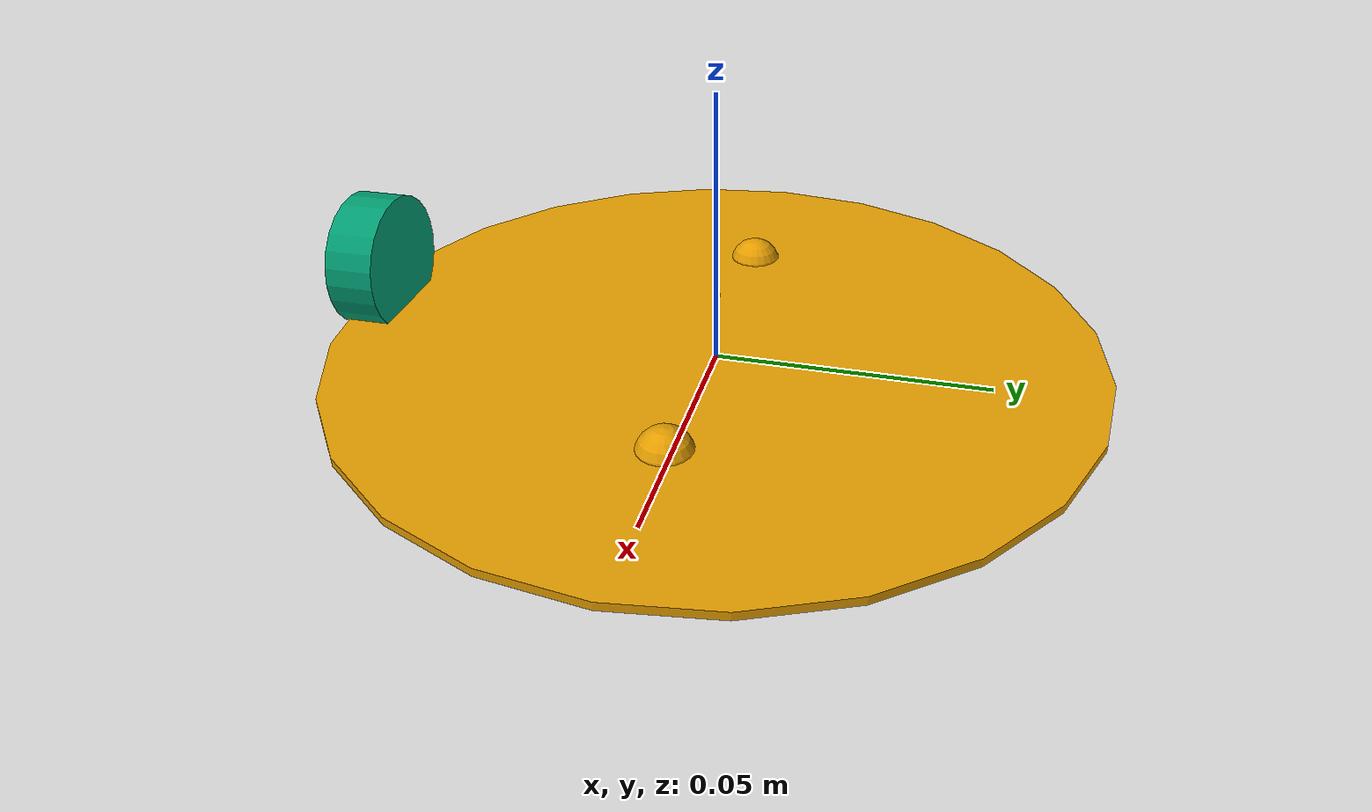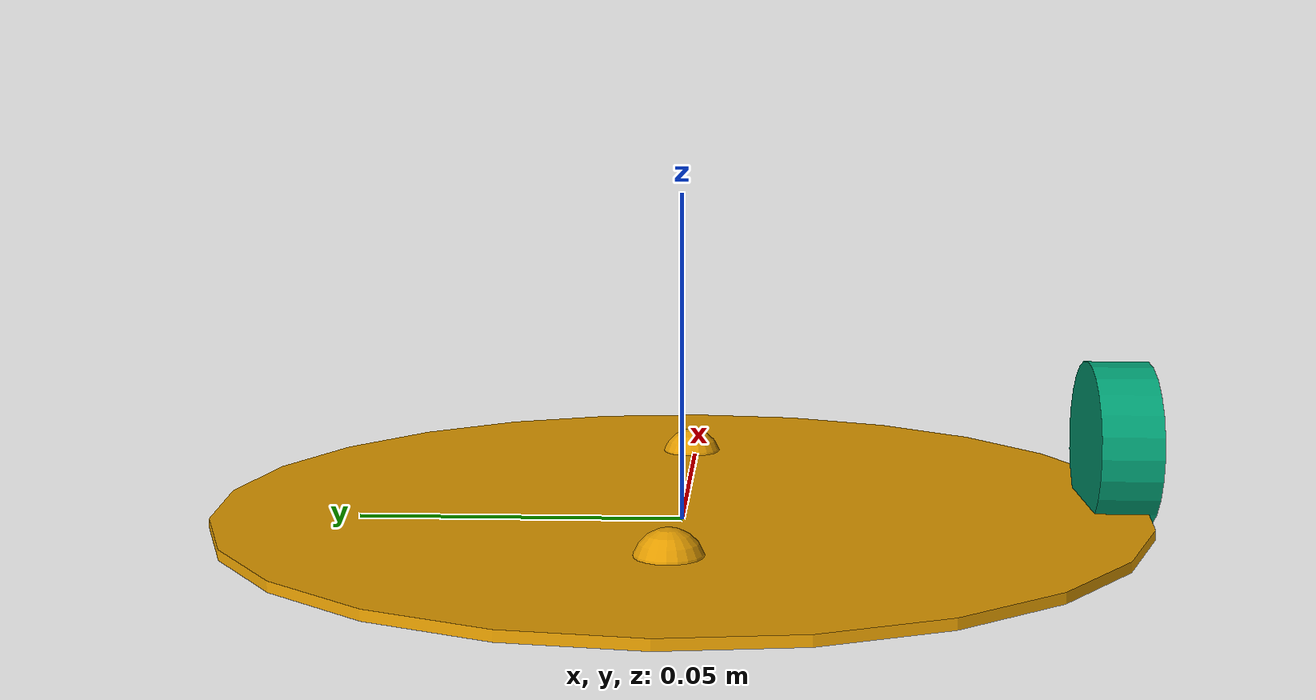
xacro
<?xml version="1.0"?>
<robot xmlns:xacro="http://www.ros.org/wiki/xacro" name="pibot">
  <xacro:include filename="$(find pibot_description)/models/iti0201_robot/urdf/pibot.urdf.xacro" />

  <xacro:base_with_casters/>
  <xacro:wheels/>
</robot>

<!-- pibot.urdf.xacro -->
<robot xmlns:xacro="http://www.ros.org/wiki/xacro" name="pibot">

  <xacro:macro name="base_with_casters">
    <xacro:property name="base_radius" value="0.07" />
    <xacro:property name="base_height" value="0.0015" />
    <xacro:property name="base_mass" value="0.48" />
    <xacro:property name="caster_wheel_radius" value="0.005" />

    <link name="base_with_casters">

      <inertial>
        <mass value="${base_mass}"/>
        <inertia ixx="${1/12 * base_mass * ((3 * base_radius * base_radius) + (base_height * base_height))}" ixy="0.0" ixz="0.0"
          iyy="${1/12 * base_mass * ((3 * base_radius * base_radius) + (base_height * base_height))}" iyz="0.0"
          izz="${1/2 * base_mass * (base_radius * base_radius)}"/>
      </inertial>

      <visual name='base_visual'>
      <origin xyz="0 0 0.003" rpy="0 0 0"/>
        <geometry>
          <cylinder radius="${base_radius}" length="${base_height}"/>
        </geometry>
      </visual>

      <collision name='base_collision'>
      <origin xyz="0 0 0.003" rpy="0 0 0"/>
        <geometry>
          <cylinder radius="${base_radius}" length="${base_height}"/>
        </geometry>
      </collision>

      <visual name='front_caster_visual'>
        <origin xyz="0.035 0 0.0025" rpy="0 0 0"/>
        <geometry>
          <sphere radius="${caster_wheel_radius}"/>
        </geometry>
      </visual>

      <collision name='front_caster_collision'>
        <origin xyz="0.035 0 0.0025" rpy="0 0 0"/>
        <geometry>
          <sphere radius="${caster_wheel_radius}"/>
        </geometry>
      </collision>

      <visual name='rear_caster_visual'>
        <origin xyz="-0.035 0 0.0025" rpy="0 0 0"/>
        <geometry>
          <sphere radius="${caster_wheel_radius}"/>
        </geometry>
      </visual>

      <collision name='rear_caster_collision'>
        <origin xyz="-0.035 0 0.0025" rpy="0 0 0"/>
        <geometry>
          <sphere radius="${caster_wheel_radius}"/>
        </geometry>
      </collision>
    </link>

    <gazebo reference="base_with_casters">
      <surface>
        <friction>
          <ode>
            <mu1 value="1.0"/>
            <mu2 value="1.0"/>
          </ode>
        </friction>
      </surface>
    </gazebo>

    <link name="wheel_joint">
      <visual name='joint_visual'>
        <geometry>
          <box size="0.001 0.001 0.001"/>
        </geometry>
      </visual>
    </link>

    <joint type="fixed" name="Wheel_joint_to_base">
      <origin xyz="0 0 0.0125" rpy="0 0 0" />
      <child link="wheel_joint"/>
      <parent link="base_with_casters" />
    </joint>
  </xacro:macro>

<!-- ONLY VISUAL -->
  <xacro:macro name="brainbox_with_battery">
    <link name="brainbox_with_battery">
      <visual name="brainbox_visual">
        <origin xyz="-0.022 0 0.0294" rpy="0 0 0" />
        <geometry>
          <box size="0.077 0.0468 0.0512"/>
        </geometry>
      </visual>

      <visual name="camera_stand_visual">
        <origin xyz="0.0294 0 0.043" rpy="0 0 0" />
        <geometry>
          <box size="0.0255 0.0553 0.07896"/>
        </geometry>
      </visual>

      <visual name="camera_stand_right_wall_visual">
        <origin xyz="0.0294 -0.02467 0.1" rpy="0 0 0" />
        <geometry>
          <box size="0.0255 0.006 0.0346"/>
        </geometry>
      </visual>

      <visual name="camera_stand_left_wall_visual">
        <origin xyz="0.0294 0.02467 0.1" rpy="0 0 0" />
        <geometry>
          <box size="0.0255 0.006 0.0346"/>
        </geometry>
      </visual>
    </link>

    <joint type="fixed" name="brainbox_to_base">
      <origin xyz="0 0 0" rpy="0 0 0"/>
      <child link="brainbox_with_battery"/>
      <parent link="base_with_casters"/>
    </joint>
  </xacro:macro>

<!-- SHARP SENSORS -->
  <xacro:macro name="front_ir_sensors">
    <link name="front_right_45deg_ir">
      <collision name="collision">
        <geometry>
          <box size="0.01 0.01 0.02"/>
        </geometry>
      </collision>

      <visual name="visual">
        <geometry>
          <box size="0.01 0.01 0.02"/>
        </geometry>
      </visual>
    </link>

    <joint type="fixed" name="front_right_45deg_ir_to_base">
      <origin xyz="0.0326 -0.0471 0.0138" rpy="0 0 -0.78535"/>
      <child link="front_right_45deg_ir"/>
      <parent link="base_with_casters"/>
    </joint>

    <gazebo reference="front_right_45deg_ir">
      <sensor name="ir" type="ray">
        <ray>
          <scan>
            <horizontal>
              <samples>100</samples>
              <resolution>1</resolution>
            </horizontal>
          </scan>
          <range>
            <min>0.01</min>
            <max>2.00</max>
            <resolution>0.1</resolution>
          </range>
        </ray>
        <always_on>1</always_on>
        <update_rate>30</update_rate>
        <visualize>true</visualize>
        <plugin name="ir_plugin" filename="libir_plugin.so">
          <topic>ir/front_right</topic>
        </plugin>
      </sensor>
    </gazebo>

    <link name="front_middle_ir">
      <collision name="collision">
        <geometry>
          <box size="0.01 0.02 0.01"/>
        </geometry>
      </collision>

      <visual name="visual">
        <geometry>
          <box size="0.01 0.02 0.01"/>
        </geometry>
      </visual>
    </link>

    <joint type="fixed" name="front_middle_ir_to_base">
      <origin xyz="0.059312 0 0.0088" rpy="0 0 0"/>
      <child link="front_middle_ir"/>
      <parent link="base_with_casters"/>
    </joint>

    <gazebo reference="front_middle_ir">
      <sensor name="ir" type="ray">
          <ray>
            <scan>
              <horizontal>
                <samples>100</samples>
                <resolution>1</resolution>
              </horizontal>
            </scan>
            <range>
              <min>0.01</min>
              <max>2.00</max>
              <resolution>0.1</resolution>
            </range>
          </ray>
          <always_on>1</always_on>
          <update_rate>30</update_rate>
          <visualize>true</visualize>
          <plugin name="ir_plugin" filename="libir_plugin.so">
            <topic>ir/front_middle</topic>
          </plugin>
        </sensor>
    </gazebo>

    <link name="front_left_45deg_ir">
      <collision name="collision">
        <geometry>
          <box size="0.01 0.01 0.02"/>
        </geometry>
      </collision>

      <visual name="visual">
        <geometry>
          <box size="0.01 0.01 0.02"/>
        </geometry>
      </visual>
    </link>

    <joint type="fixed" name="front_left_45deg_ir_to_base">
      <origin xyz="0.0326151 0.0470558 0.0138" rpy="0 0 0.78535"/>
      <child link="front_left_45deg_ir"/>
      <parent link="base_with_casters"/>
    </joint>

    <gazebo reference="front_left_45deg_ir">
      <sensor name="ir" type="ray">
          <ray>
            <scan>
              <horizontal>
                <samples>100</samples>
                <resolution>1</resolution>
              </horizontal>
            </scan>
            <range>
              <min>0.01</min>
              <max>2.00</max>
              <resolution>0.1</resolution>
            </range>
          </ray>
          <always_on>1</always_on>
          <update_rate>30</update_rate>
          <visualize>true</visualize>
          <plugin name="ir_plugin" filename="libir_plugin.so">
            <topic>ir/front_left</topic>
          </plugin>
        </sensor>
    </gazebo>
  </xacro:macro>

<!-- REAR IR SENSORS -->
  <xacro:macro name="rear_ir_sensors">
    <link name="rear_right_90deg_ir">
      <collision name="collision">
        <geometry>
          <box size="0.012 0.008 0.0135"/>
        </geometry>
      </collision>
      <visual name="visual">
        <geometry>
          <box size="0.012 0.008 0.0135"/>
        </geometry>
      </visual>
    </link>

    <joint type="fixed" name="rear_right_90deg_ir_to_base">
    <origin xyz="-0.02256 -0.0547 0.01134" rpy="0 0 -1.5707" />
      <child link="rear_right_90deg_ir"/>
      <parent link="base_with_casters"/>
    </joint>

    <gazebo reference="rear_right_90deg_ir">
      <sensor name="ir" type="ray">
        <ray>
          <scan>
            <horizontal>
              <samples>100</samples>
              <resolution>1</resolution>
            </horizontal>
          </scan>
          <range>
            <min>0.01</min>
            <max>2.00</max>
            <resolution>0.1</resolution>
          </range>
        </ray>
        <always_on>1</always_on>
        <update_rate>30</update_rate>
        <visualize>true</visualize>
        <plugin name="ir_plugin" filename="libir_plugin.so">
          <topic>ir/rear_right_90</topic>
        </plugin>
      </sensor>
    </gazebo>

    <link name="rear_right_45deg_ir">
      <collision name="collision">
        <geometry>
          <box size="0.012 0.008 0.0135"/>
        </geometry>
      </collision>
      <visual name="visual">
        <geometry>
          <box size="0.012 0.008 0.0135"/>
        </geometry>
      </visual>
    </link>

    <joint type="fixed" name="rear_right_45deg_ir_to_base">
    <origin xyz="-0.037845 -0.046812 0.011341" rpy="0 0 -2.35605" />
      <child link="rear_right_45deg_ir"/>
      <parent link="base_with_casters"/>
    </joint>

    <gazebo reference="rear_right_45deg_ir">
      <sensor name="ir" type="ray">
        <ray>
          <scan>
            <horizontal>
              <samples>100</samples>
              <resolution>1</resolution>
            </horizontal>
          </scan>
          <range>
            <min>0.01</min>
            <max>2.00</max>
            <resolution>0.1</resolution>
          </range>
        </ray>
        <always_on>1</always_on>
        <update_rate>30</update_rate>
        <visualize>true</visualize>
        <plugin name="ir_plugin" filename="libir_plugin.so">
          <topic>ir/rear_right_45</topic>
        </plugin>
      </sensor>
    </gazebo>

    <link name="rear_right_straight_ir">
      <collision name="collision">
        <geometry>
          <box size="0.012 0.008 0.0135"/>
        </geometry>
      </collision>
      <visual name="visual">
        <geometry>
          <box size="0.012 0.008 0.0135"/>
        </geometry>
      </visual>
    </link>

    <joint type="fixed" name="rear_right_straight_ir_to_base">
    <origin xyz="-0.0501109 -0.035473 0.011341" rpy="0 0 -3.14" />
      <child link="rear_right_straight_ir"/>
      <parent link="base_with_casters"/>
    </joint>

    <gazebo reference="rear_right_straight_ir">
      <sensor name="ir" type="ray">
        <ray>
          <scan>
            <horizontal>
              <samples>100</samples>
              <resolution>1</resolution>
            </horizontal>
          </scan>
          <range>
            <min>0.01</min>
            <max>2.00</max>
            <resolution>0.1</resolution>
          </range>
        </ray>
        <always_on>1</always_on>
        <update_rate>30</update_rate>
        <visualize>true</visualize>
        <plugin name="ir_plugin" filename="libir_plugin.so">
          <topic>ir/rear_right_0</topic>
        </plugin>
      </sensor>
    </gazebo>

      <link name="rear_left_90deg_ir">
        <collision name="collision">
          <geometry>
            <box size="0.012 0.008 0.0135"/>
          </geometry>
        </collision>
        <visual name="visual">
          <geometry>
            <box size="0.012 0.008 0.0135"/>
          </geometry>
        </visual>
      </link>

      <joint type="fixed" name="rear_left_90deg_ir_to_base">
      <origin xyz="-0.0225688 0.054749 0.011341" rpy="0 0 1.5707" />
        <child link="rear_left_90deg_ir"/>
        <parent link="base_with_casters"/>
      </joint>

      <gazebo reference="rear_left_90deg_ir">
        <sensor name="ir" type="ray">
          <ray>
            <scan>
              <horizontal>
                <samples>100</samples>
                <resolution>1</resolution>
              </horizontal>
            </scan>
            <range>
              <min>0.01</min>
              <max>2.00</max>
              <resolution>0.1</resolution>
            </range>
          </ray>
          <always_on>1</always_on>
          <update_rate>30</update_rate>
          <visualize>true</visualize>
          <plugin name="ir_plugin" filename="libir_plugin.so">
            <topic>ir/rear_left_90</topic>
          </plugin>
        </sensor>
      </gazebo>

      <link name="rear_left_45deg_ir">
        <collision name="collision">
          <geometry>
            <box size="0.012 0.008 0.0135"/>
          </geometry>
        </collision>
        <visual name="visual">
          <geometry>
            <box size="0.012 0.008 0.0135"/>
          </geometry>
        </visual>
      </link>

      <joint type="fixed" name="rear_left_45deg_ir_to_base">
      <origin xyz="-0.037845 0.046812 0.011341" rpy="0 0 2.35605" />
        <child link="rear_left_45deg_ir"/>
        <parent link="base_with_casters"/>
      </joint>

      <gazebo reference="rear_left_45deg_ir">
        <sensor name="ir" type="ray">
          <ray>
            <scan>
              <horizontal>
                <samples>100</samples>
                <resolution>1</resolution>
              </horizontal>
            </scan>
            <range>
              <min>0.01</min>
              <max>2.00</max>
              <resolution>0.1</resolution>
            </range>
          </ray>
          <always_on>1</always_on>
          <update_rate>30</update_rate>
          <visualize>true</visualize>
          <plugin name="ir_plugin" filename="libir_plugin.so">
            <topic>ir/rear_left_45</topic>
          </plugin>
        </sensor>
      </gazebo>

      <link name="rear_left_straight_ir">
        <collision name="collision">
          <geometry>
            <box size="0.012 0.008 0.0135"/>
          </geometry>
        </collision>
        <visual name="visual">
          <geometry>
            <box size="0.012 0.008 0.0135"/>
          </geometry>
        </visual>
      </link>

      <joint type="fixed" name="rear_left_straight_ir_to_base">
      <origin xyz="-0.0501109 0.035473 0.011341" rpy="0 0 3.14" />
        <child link="rear_left_straight_ir"/>
        <parent link="base_with_casters"/>
      </joint>

      <gazebo reference="rear_left_straight_ir">
        <sensor name="ir" type="ray">
          <pose>0 0 0 0 -0 1.571</pose>
          <ray>
            <scan>
              <horizontal>
                <samples>100</samples>
                <resolution>1</resolution>
              </horizontal>
            </scan>
            <range>
              <min>0.01</min>
              <max>2.00</max>
              <resolution>0.1</resolution>
            </range>
          </ray>
          <always_on>1</always_on>
          <update_rate>30</update_rate>
          <visualize>true</visualize>
          <plugin name="ir_plugin" filename="libir_plugin.so">
            <topic>ir/rear_left_0</topic>
          </plugin>
        </sensor>
      </gazebo>
  </xacro:macro>

<!-- LINE SENSORS -->
  <xacro:macro name="first_two_line_sensors">
    <link name="right_side_first_line_sensor_from_middle">
        <collision name="collision">
          <geometry>
            <box size="0.0015 0.0035 0.0025"/>
          </geometry>
        </collision>
        <visual name="visual">
          <geometry>
            <box size="0.0015 0.0035 0.0025"/>
          </geometry>
        </visual>
      </link>

      <joint type="fixed" name="right_side_first_line_sensor_from_middle_to_base">
      <origin xyz="-0.0629 -0.005 0.0014545" rpy="0 1.5707 0" />
        <child link="right_side_first_line_sensor_from_middle"/>
        <parent link="base_with_casters"/>
      </joint>

      <gazebo reference="right_side_first_line_sensor_from_middle">
        <sensor type="camera" name="line_sensor_camera1">
          <update_rate>30.0</update_rate>
          <camera name="head">
            <horizontal_fov>0.4</horizontal_fov>
            <image>
              <width>48</width>
              <height>48</height>
              <format>L8</format>
            </image>
            <clip>
                <near>0.001</near>
                <far>0.031</far>
            </clip>
          </camera>
          <always_on>1</always_on>
          <update_rate>30</update_rate>
          <visualize>true</visualize>
          <plugin name="camera_controller" filename="libgazebo_ros_camera.so">
            <alwaysOn>true</alwaysOn>
            <updateRate>30.0</updateRate>
            <cameraName>/robot/line_sensor/right_first</cameraName>
            <imageTopicName>image_raw</imageTopicName>
            <cameraInfoTopicName>camera_info</cameraInfoTopicName>
            <frameName>camera_link</frameName>
            <hackBaseline>0.07</hackBaseline>
            <distortionK1>0.0</distortionK1>
            <distortionK2>0.0</distortionK2>
            <distortionK3>0.0</distortionK3>
            <distortionT1>0.0</distortionT1>
            <distortionT2>0.0</distortionT2>
          </plugin>
        </sensor>
      </gazebo>

      <link name="left_side_first_line_sensor_from_middle">
        <collision name="collision">
          <geometry>
            <box size="0.0015 0.0035 0.0025"/>
          </geometry>
        </collision>
        <visual name="visual">
          <geometry>
            <box size="0.0015 0.0035 0.0025"/>
          </geometry>
        </visual>
      </link>

      <joint type="fixed" name="left_side_first_line_sensor_from_middle_to_base">
      <origin xyz="-0.0629 0.005 0.0014545" rpy="0 1.5707 0" />
        <child link="left_side_first_line_sensor_from_middle"/>
        <parent link="base_with_casters"/>
      </joint>

      <gazebo reference="left_side_first_line_sensor_from_middle">
        <sensor type="camera" name="line_sensor_camera2">
          <update_rate>30.0</update_rate>
          <pose>0 0 0 0 1.571 0</pose>
          <camera name="head">
            <horizontal_fov>0.4</horizontal_fov>
            <image>
              <width>48</width>
              <height>48</height>
              <format>L8</format>
            </image>
            <clip>
                <near>0.001</near>
                <far>0.031</far>
            </clip>
          </camera>
          <always_on>1</always_on>
          <update_rate>30</update_rate>
          <visualize>true</visualize>
          <plugin name="camera_controller" filename="libgazebo_ros_camera.so">
            <alwaysOn>true</alwaysOn>
            <updateRate>30.0</updateRate>
            <cameraName>/robot/line_sensor/left_first</cameraName>
            <imageTopicName>image_raw</imageTopicName>
            <cameraInfoTopicName>camera_info</cameraInfoTopicName>
            <frameName>camera_link</frameName>
            <hackBaseline>0.07</hackBaseline>
            <distortionK1>0.0</distortionK1>
            <distortionK2>0.0</distortionK2>
            <distortionK3>0.0</distortionK3>
            <distortionT1>0.0</distortionT1>
            <distortionT2>0.0</distortionT2>
          </plugin>
        </sensor>
      </gazebo>
  </xacro:macro>

  <xacro:macro name="second_two_line_sensors">
    <link name="right_side_second_line_sensor_from_middle">
        <collision name="collision">
          <geometry>
            <box size="0.0015 0.0035 0.0025"/>
          </geometry>
        </collision>
        <visual name="visual">
          <geometry>
            <box size="0.0015 0.0035 0.0025"/>
          </geometry>
        </visual>
      </link>

      <joint type="fixed" name="right_side_second_line_sensor_from_middle_to_base">
      <origin xyz="-0.06289935 -0.015 0.0014545" rpy="0 1.5707 0" />
        <child link="right_side_second_line_sensor_from_middle"/>
        <parent link="base_with_casters"/>
      </joint>

      <gazebo reference="right_side_second_line_sensor_from_middle">
        <sensor type="camera" name="line_sensor_camera3">
          <update_rate>30.0</update_rate>
          <pose>0 0 0 0 1.571 0</pose>
          <camera name="head">
            <horizontal_fov>0.4</horizontal_fov>
            <image>
              <width>48</width>
              <height>48</height>
              <format>L8</format>
            </image>
            <clip>
                <near>0.001</near>
                <far>0.031</far>
            </clip>
          </camera>
          <always_on>1</always_on>
          <update_rate>30</update_rate>
          <visualize>true</visualize>
          <plugin name="camera_controller" filename="libgazebo_ros_camera.so">
            <alwaysOn>true</alwaysOn>
            <updateRate>30.0</updateRate>
            <cameraName>/robot/line_sensor/right_second</cameraName>
            <imageTopicName>image_raw</imageTopicName>
            <cameraInfoTopicName>camera_info</cameraInfoTopicName>
            <frameName>camera_link</frameName>
            <hackBaseline>0.07</hackBaseline>
            <distortionK1>0.0</distortionK1>
            <distortionK2>0.0</distortionK2>
            <distortionK3>0.0</distortionK3>
            <distortionT1>0.0</distortionT1>
            <distortionT2>0.0</distortionT2>
          </plugin>
        </sensor>
      </gazebo>

      <link name="left_side_second_line_sensor_from_middle">
        <collision name="collision">
          <geometry>
            <box size="0.0015 0.0035 0.0025"/>
          </geometry>
        </collision>
        <visual name="visual">
          <geometry>
            <box size="0.0015 0.0035 0.0025"/>
          </geometry>
        </visual>
      </link>

      <joint type="fixed" name="left_side_second_line_sensor_from_middle_to_base">
      <origin xyz="-0.06289935 0.015 0.0014545" rpy="0 1.5707 0" />
        <child link="left_side_second_line_sensor_from_middle"/>
        <parent link="base_with_casters"/>
      </joint>

      <gazebo reference="left_side_second_line_sensor_from_middle">
        <sensor type="camera" name="line_sensor_camera4">
          <update_rate>30.0</update_rate>
          <pose>0 0 0 0 1.571 0</pose>
          <camera name="head">
            <horizontal_fov>0.4</horizontal_fov>
            <image>
              <width>48</width>
              <height>48</height>
              <format>L8</format>
            </image>
            <clip>
                <near>0.001</near>
                <far>0.031</far>
            </clip>
          </camera>
          <always_on>1</always_on>
          <update_rate>30</update_rate>
          <visualize>true</visualize>
          <plugin name="camera_controller" filename="libgazebo_ros_camera.so">
            <alwaysOn>true</alwaysOn>
            <updateRate>30.0</updateRate>
            <cameraName>/robot/line_sensor/left_second</cameraName>
            <imageTopicName>image_raw</imageTopicName>
            <cameraInfoTopicName>camera_info</cameraInfoTopicName>
            <frameName>camera_link</frameName>
            <hackBaseline>0.07</hackBaseline>
            <distortionK1>0.0</distortionK1>
            <distortionK2>0.0</distortionK2>
            <distortionK3>0.0</distortionK3>
            <distortionT1>0.0</distortionT1>
            <distortionT2>0.0</distortionT2>
          </plugin>
        </sensor>
      </gazebo>
  </xacro:macro>

  <xacro:macro name="third_two_line_sensors">
    <link name="right_side_third_line_sensor_from_middle">
        <collision name="collision">
          <geometry>
            <box size="0.0015 0.0035 0.0025"/>
          </geometry>
        </collision>
        <visual name="visual">
          <geometry>
            <box size="0.0015 0.0035 0.0025"/>
          </geometry>
        </visual>
      </link>

      <joint type="fixed" name="right_side_third_line_sensor_from_middle_to_base">
      <origin xyz="-0.0541 -0.035 0.0014545" rpy="0 1.5707 0" />
        <child link="right_side_third_line_sensor_from_middle"/>
        <parent link="base_with_casters"/>
      </joint>

      <gazebo reference="right_side_third_line_sensor_from_middle">
        <sensor type="camera" name="line_sensor_camera5">
          <update_rate>30.0</update_rate>
          <pose>0 0 0 0 1.571 0</pose>
          <camera name="head">
            <horizontal_fov>0.4</horizontal_fov>
            <image>
              <width>48</width>
              <height>48</height>
              <format>L8</format>
            </image>
            <clip>
                <near>0.001</near>
                <far>0.031</far>
            </clip>
          </camera>
          <always_on>1</always_on>
          <update_rate>30</update_rate>
          <visualize>true</visualize>
          <plugin name="camera_controller" filename="libgazebo_ros_camera.so">
            <alwaysOn>true</alwaysOn>
            <updateRate>30.0</updateRate>
            <cameraName>/robot/line_sensor/right_third</cameraName>
            <imageTopicName>image_raw</imageTopicName>
            <cameraInfoTopicName>camera_info</cameraInfoTopicName>
            <frameName>camera_link</frameName>
            <hackBaseline>0.07</hackBaseline>
            <distortionK1>0.0</distortionK1>
            <distortionK2>0.0</distortionK2>
            <distortionK3>0.0</distortionK3>
            <distortionT1>0.0</distortionT1>
            <distortionT2>0.0</distortionT2>
          </plugin>
        </sensor>
      </gazebo>

      <link name="left_side_third_line_sensor_from_middle">
        <collision name="collision">
          <geometry>
            <box size="0.0015 0.0035 0.0025"/>
          </geometry>
        </collision>
        <visual name="visual">
          <geometry>
            <box size="0.0015 0.0035 0.0025"/>
          </geometry>
        </visual>
      </link>

      <joint type="fixed" name="left_side_third_line_sensor_from_middle_to_base">
      <origin xyz="-0.0541 0.035 0.0014545" rpy="0 1.5707 0" />
        <child link="left_side_third_line_sensor_from_middle"/>
        <parent link="base_with_casters"/>
      </joint>

      <gazebo reference="left_side_third_line_sensor_from_middle">
        <sensor type="camera" name="line_sensor_camera6">
          <update_rate>30.0</update_rate>
          <pose>0 0 0 0 1.571 0</pose>
          <camera name="head">
            <horizontal_fov>0.4</horizontal_fov>
            <image>
              <width>48</width>
              <height>48</height>
              <format>L8</format>
            </image>
            <clip>
                <near>0.001</near>
                <far>0.031</far>
            </clip>
          </camera>
          <always_on>1</always_on>
          <update_rate>30</update_rate>
          <visualize>true</visualize>
          <plugin name="camera_controller" filename="libgazebo_ros_camera.so">
            <alwaysOn>true</alwaysOn>
            <updateRate>30.0</updateRate>
            <cameraName>/robot/line_sensor/left_third</cameraName>
            <imageTopicName>image_raw</imageTopicName>
            <cameraInfoTopicName>camera_info</cameraInfoTopicName>
            <frameName>camera_link</frameName>
            <hackBaseline>0.07</hackBaseline>
            <distortionK1>0.0</distortionK1>
            <distortionK2>0.0</distortionK2>
            <distortionK3>0.0</distortionK3>
            <distortionT1>0.0</distortionT1>
            <distortionT2>0.0</distortionT2>
          </plugin>
        </sensor>
      </gazebo>
  </xacro:macro>

<!-- CAMERA -->
  <xacro:macro name="raspberry_camera">
    <link name="camera_stand_pole">
        <collision name="collision">
          <geometry>
            <cylinder radius="0.003822" length="0.0433499"/>
          </geometry>
        </collision>
        <visual name="visual">
          <geometry>
            <cylinder radius="0.003822" length="0.0433499"/>
          </geometry>
        </visual>
      </link>

      <joint type="fixed" name="camera_stand_pole_to_base">
      <origin xyz="0.02940475 0 0.1135341" rpy="0 1.5707 1.5707" />
        <child link="camera_stand_pole"/>
        <parent link="base_with_casters"/>
      </joint>

      <link name="pi_camera">
        <collision name="collision">
          <geometry>
            <box size="0.017 0.024 0.024"/>
          </geometry>
        </collision>
        <visual name="visual">
          <geometry>
            <box size="0.017 0.024 0.024"/>
          </geometry>
        </visual>
      </link>

      <joint type="fixed" name="pi_camera_to_pole">
      <origin xyz="0 -0.0104 0" rpy="0 0 -1.5707"/>
        <child link="pi_camera"/>
        <parent link="camera_stand_pole"/>
      </joint>

      <gazebo reference="pi_camera">
        <sensor type="camera" name="camera">
          <update_rate>30.0</update_rate>
          <always_on>1</always_on>
          <visualize>true</visualize>
          <camera name="head">
            <horizontal_fov>1.3962634</horizontal_fov>
            <image>
              <width>800</width>
              <height>800</height>
              <format>R8G8B8</format>
            </image>
            <clip>
              <near>0.02</near>
              <far>300</far>
            </clip>
          </camera>

          <plugin name="camera_controller" filename="libgazebo_ros_camera.so">
            <alwaysOn>true</alwaysOn>
            <updateRate>0.0</updateRate>
            <cameraName>robot/camera</cameraName>
            <imageTopicName>image_raw</imageTopicName>
            <cameraInfoTopicName>camera_info</cameraInfoTopicName>
            <frameName>camera_link</frameName>
            <hackBaseline>0.07</hackBaseline>
            <distortionK1>0.0</distortionK1>
            <distortionK2>0.0</distortionK2>
            <distortionK3>0.0</distortionK3>
            <distortionT1>0.0</distortionT1>
            <distortionT2>0.0</distortionT2>
          </plugin>
        </sensor>
      </gazebo>
  </xacro:macro>

<!-- WHEELS -->
  <xacro:macro name="wheels">
    <xacro:property name="wheel_mass" value="0.005" />
    <xacro:property name="wheel_radius" value="0.0125"/>
    <xacro:property name="wheel_length" value="0.009"/>

    <link name="right_wheel">
        <inertial>
          <mass value="${wheel_mass}"/>
          <origin xyz="0 0 0" />
          <inertia ixx="${1/12 * wheel_mass * ((3 * wheel_radius * wheel_radius) + (wheel_length * wheel_length))}" ixy="0.0" ixz="0.0"
            iyy="${1/12 * wheel_mass * ((3 * wheel_radius * wheel_radius) + (wheel_length * wheel_length))}" iyz="0.0"
            izz="${1/2 * wheel_mass * (wheel_radius * wheel_radius)}"/>
        </inertial>

        <visual name="visual">
        <origin xyz="0 0 0" rpy="0 0 0" />
          <geometry>
            <cylinder radius="${wheel_radius}" length="${wheel_length}"/>
          </geometry>
        </visual>

        <collision name="collision">
        <origin xyz="0 0 0" rpy="0 0 0" />
          <geometry>
            <cylinder radius="${wheel_radius}" length="${wheel_length}"/>
          </geometry>
        </collision>
    </link>

      <gazebo reference="right_wheel">
        <mu1 value="0.6"/>
        <mu2 value="0.6"/>
        <kp value="10000000.0" />
        <kd value="1.0" />
        <fdir1 value="1 0 0"/>
      </gazebo>

      <joint type="revolute" name="right_wheel_hinge">
      <origin xyz="0 -0.0655 0" rpy="0 1.5707 1.5707"/>
        <child link="right_wheel"/>
        <parent link="wheel_joint"/>
        <!--proovisin erinevaid väärtusi siia "limit" alla, midagi ei muutunud -->
        <limit lower="0" upper="0" effort="10.0" velocity="1.0" />
        <axis xyz="0 1 0" rpy="0 0 0"/>
      </joint>

  </xacro:macro>

  <xacro:macro name="cyton_gamma_1500" params="prefix virtual_ee">
    <link name="${prefix}base_link">
      <visual>
        <origin xyz="0 0 0" rpy="0 0 0"/>
        <geometry>
          <mesh filename="package://cyton_gamma_1500_description/meshes/base.dae"/>
        </geometry>
      </visual>
      <collision>
        <origin xyz="0 0.0115 0.047"/>
        <geometry>
          <box size="0.154 0.177 0.094"/>
        </geometry>
      </collision>
      <inertial>
        <mass value="100.0"/>
        <origin rpy="0 0 0" xyz="0 0 0"/>
        <inertia ixx="1.1027" iyy="1.1027" izz="1.1027"
                  ixy="0" ixz="0" iyz="0"/>
      </inertial>
    </link>

    <joint name="${prefix}shoulder_roll_joint" type="revolute">
      <parent link="${prefix}base_link" />
      <child link="${prefix}shoulder_roll" />
      <origin xyz="0 0 0.05315" rpy="0 0 0" />
      <limit lower="-2.618" upper="2.618" effort="100.0" velocity="1.0" />
      <axis xyz="0 0 1" />
    </joint>

    <link name="${prefix}shoulder_roll">
      <visual>
        <origin xyz="0 0 0" rpy="1.5708 0 0.384"/>
        <geometry>
          <mesh filename="package://cyton_gamma_1500_description/meshes/shoulder_roll.dae"/>
        </geometry>
      </visual>
      <collision>
        <origin xyz="0.0 0.069 0.0587"/>
        <geometry>
          <box size="0.09829 0.18143 0.08392"/>
        </geometry>
      </collision>
      <inertial>
        <mass value="50.0"/>
        <origin rpy="0 0 0" xyz="0 0 0"/>
        <inertia ixx=".1027" iyy=".1027" izz=".1027"
                  ixy="0" ixz="0" iyz="0"/>
      </inertial>
    </link>

    <joint name="${prefix}shoulder_pitch_joint" type="revolute">
      <parent link="${prefix}shoulder_roll" />
      <child link="${prefix}shoulder_pitch" />
      <origin xyz="0.0205 0 0.12435" rpy="0 0 0" />
      <limit lower="-1.8326" upper="1.8326" effort="100.0" velocity="1.0" />
      <axis xyz="1 0 0" />
    </joint>

    <link name="${prefix}shoulder_pitch">
      <visual>
        <origin xyz="0 0 0" rpy="1.5708 0 0" />
        <geometry>
          <mesh filename="package://cyton_gamma_1500_description/meshes/shoulder_pitch.dae"/>
        </geometry>
      </visual>
      <collision>
        <origin xyz="-0.001 0.064 0.1745"/>
        <geometry>
          <box size="0.0709 0.19363 0.083"/>
        </geometry>
      </collision>
      <inertial>
        <mass value="20.0"/>
        <origin rpy="0 0 0" xyz="0 0 0"/>
        <inertia ixx=".0827" iyy=".0827" izz=".0827"
                  ixy="0" ixz="0" iyz="0"/>
      </inertial>
    </link>

    <joint name="${prefix}shoulder_yaw_joint" type="revolute">
      <parent link="${prefix}shoulder_pitch" />
      <child link="${prefix}shoulder_yaw" />
      <origin xyz="-0.0215 -0.0205 0.1255" rpy="0 0 0" />
      <limit lower="-1.8326" upper="1.8326" effort="100.0" velocity="1.0" />
      <axis xyz="0 -1 0" />
    </joint>

    <link name="${prefix}shoulder_yaw">
      <visual>
        <origin xyz="0 0 0.0" rpy="1.5708 0 -1.5708" />
        <geometry>
          <mesh filename="package://cyton_gamma_1500_description/meshes/shoulder_yaw.dae"/>
        </geometry>
      </visual>
      <collision>
        <origin xyz="-0.0225 0.039 0.3068"/>
        <geometry>
          <box size="0.0717 0.1846 0.0756"/>
        </geometry>
      </collision>
      <inertial>
        <mass value="10.0"/>
        <origin rpy="0 0 0" xyz="0 0 0"/>
        <inertia ixx=".0627" iyy=".0627" izz=".0627"
                  ixy="0" ixz="0" iyz="0"/>
      </inertial>
    </link>

    <joint name="${prefix}elbow_pitch_joint" type="revolute">
      <parent link="${prefix}shoulder_yaw" />
      <child link="${prefix}elbow_pitch" />
      <origin xyz="0.018 0.0206 0.1158" rpy="0 0 0" />
      <limit lower="-1.8326" upper="1.8326" effort="100.0" velocity="1.0" />
      <axis xyz="1 0 0" />
    </joint>

    <link name="${prefix}elbow_pitch">
      <visual>
        <origin xyz="0 0 0" rpy="1.5708 0 3.1416" />
        <geometry>
          <mesh filename="package://cyton_gamma_1500_description/meshes/elbow_pitch.dae"/>
        </geometry>
      </visual>
      <collision>
        <origin xyz="0.0346 0.0461 0.4228"/>
        <geometry>
          <box size="0.0549 0.1557 0.076"/>
        </geometry>
      </collision>
      <inertial>
        <mass value="10.0"/>
        <origin rpy="0 0 0" xyz="0 0 0"/>
        <inertia ixx=".0327" iyy=".0327" izz=".0327"
                  ixy="0" ixz="0" iyz="0"/>
      </inertial>
    </link>

    <joint name="${prefix}elbow_yaw_joint" type="revolute">
      <parent link="${prefix}elbow_pitch" />
      <child link="${prefix}elbow_yaw" />
      <origin xyz="-0.0171 -0.018 0.09746" rpy="0 0 0" />
      <limit lower="-1.8326" upper="1.8326" effort="100.0" velocity="1.0" />
      <axis xyz="0 -1 0" />
    </joint>

    <link name="${prefix}elbow_yaw">
      <visual>
        <origin xyz="0 0 0" rpy="1.5708 0 1.5708" />
        <geometry>
          <mesh filename="package://cyton_gamma_1500_description/meshes/elbow_yaw.dae"/>
        </geometry>
      </visual>
      <collision>
        <origin xyz="0.0172 0.0209 0.516"/>
        <geometry>
          <box size="0.0535 0.1160 0.0402"/>
        </geometry>
      </collision>
      <inertial>
        <mass value="10.0"/>
        <origin rpy="0 0 0" xyz="0 0 0"/>
        <inertia ixx=".0227" iyy=".0227" izz=".0227"
                  ixy="0" ixz="0" iyz="0"/>
      </inertial>
    </link>

    <joint name="${prefix}wrist_pitch_joint" type="revolute">
      <parent link="${prefix}elbow_yaw" />
      <child link="${prefix}wrist_pitch" />
      <origin xyz="0.02626 0.018 0.0718" rpy="0 0 0" />
      <limit lower="-1.8326" upper="1.8326" effort="100.0" velocity="1.0" />
      <axis xyz="-1 0 0" />
    </joint>

    <link name="${prefix}wrist_pitch">
      <visual>
        <origin xyz="0 0 0" rpy="1.5708 0 1.5708" />
        <geometry>
          <mesh filename="package://cyton_gamma_1500_description/meshes/wrist_pitch.dae"/>
        </geometry>
      </visual>
      <collision>
        <origin xyz="0.0257 0.0118 0.5617"/>
        <geometry>
          <box size="0.026 0.0435 0.05185"/>
        </geometry>
      </collision>
      <inertial>
        <mass value="10.0"/>
        <origin rpy="0 0 0" xyz="0 0 0"/>
        <inertia ixx=".0127" iyy=".0127" izz=".0127"
                  ixy="0" ixz="0" iyz="0"/>
      </inertial>
    </link>

    <joint name="${prefix}wrist_roll_joint" type="revolute">
      <parent link="${prefix}wrist_pitch" />
      <child link="${prefix}wrist_roll" />
      <origin xyz="-0.026255 0 0.051425" rpy="0 0 0" />
      <limit lower="-2.61799" upper="2.61799" effort="100.0" velocity="1.0" />
      <axis xyz="0 0 1" />
    </joint>

    <link name="${prefix}wrist_roll">
      <visual>
        <origin xyz="0 0 0" rpy="3.1416 0 -1.5708" />
        <geometry>
          <mesh filename="package://cyton_gamma_1500_description/meshes/wrist_roll.dae"/>
        </geometry>
      </visual>
      <collision>
        <origin xyz="-0.0063 -0.0014 0.6102"/>
        <geometry>
          <box size="0.0518 0.0723 0.1004"/>
        </geometry>
      </collision>
      <inertial>
        <mass value="10.0"/>
        <origin rpy="0 0 0" xyz="0 0 0"/>
        <inertia ixx=".0027" iyy=".0027" izz=".0027"
                  ixy="0" ixz="0" iyz="0"/>
      </inertial>
    </link>

    <joint name="${prefix}gripper_joint" type="prismatic">
      <parent link="${prefix}wrist_roll" />
      <child link="${prefix}gripper_finger1" />
      <origin xyz="-0.01331 0.00485 0.077225" rpy="0 0 0" />
      <limit lower="-0.008" upper="0.008" effort="100.0" velocity="1.0" />
      <axis xyz="1 0 0" />
    </joint>

    <link name="${prefix}gripper_finger1">
      <visual>
        <origin xyz="0 0 0" rpy="0 0 0" />
        <geometry>
          <mesh filename="package://cyton_gamma_1500_description/meshes/gripper_finger1.dae"/>
        </geometry>
      </visual>
      <collision>
        <origin xyz="-0.0167 0.0172 0.7254"/>
        <geometry>
          <box size="0.015 0.0229 0.0475"/>
        </geometry>
      </collision>
      <inertial>
        <mass value="1.0"/>
        <origin rpy="0 0 0" xyz="0 0 0"/>
        <inertia ixx=".0027" iyy=".0027" izz=".0027"
                  ixy="0" ixz="0" iyz="0"/>
      </inertial>
    </link>

    <joint name="${prefix}gripper_joint2" type="prismatic">
      <parent link="${prefix}wrist_roll" />
      <child link="${prefix}gripper_finger2" />
      <origin xyz="0.0098 0.00485 0.077225" rpy="0 0 0" />
      <limit lower="-0.008" upper="0.008" effort="100.0" velocity="1.0" />
      <mimic joint="${prefix}gripper_joint" multiplier="-1"/>
      <axis xyz="1 0 0" />
    </joint>

    <link name="${prefix}gripper_finger2">
      <visual>
        <origin xyz="0 0 0" rpy="0 0 0" />
        <geometry>
          <mesh filename="package://cyton_gamma_1500_description/meshes/gripper_finger2.dae"/>
        </geometry>
      </visual>
      <collision>
        <origin xyz="0.0132 0.0172 0.7254"/>
        <geometry>
          <box size="0.015 0.0229 0.0475"/>
        </geometry>
      </collision>
      <inertial>
        <mass value="1.0"/>
        <origin rpy="0 0 0" xyz="0 0 0"/>
        <inertia ixx=".0027" iyy=".0027" izz=".0027"
                  ixy="0" ixz="0" iyz="0"/>
      </inertial>
    </link>

    <xacro:if value="${virtual_ee}"> <!-- virtual end-effector -->
      <joint name="${prefix}virtual_endeffector_joint" type="fixed">
        <parent link="${prefix}wrist_roll" />
        <child link="${prefix}virtual_endeffector" />
        <origin xyz="-0.002316 0.0079 0.079425" rpy="0 0 0" />
      </joint>

      <link name="${prefix}virtual_endeffector">
        <visual>
          <origin xyz="0 0 0" rpy="0 0 0" />
          <geometry>
            <sphere radius="0.002" />
          </geometry>
          <material name="grey">
            <color rgba="0.7 0.7 0.7 0.8" />
          </material>
        </visual>
      </link>
    </xacro:if>
  <gazebo>
    <plugin name="gazebo_ros_control" filename="libgazebo_ros_control.so"/>
  </gazebo>
  <gazebo>
    <plugin name="joint_state_publisher"
            filename="libgazebo_ros_joint_state_publisher.so">
      <jointName>shoulder_roll_joint, shoulder_pitch_joint, shoulder_yaw_joint, elbow_pitch_joint, elbow_yaw_joint, wrist_pitch_joint, wrist_roll_joint, gripper_joint, gripper_joint2</jointName>
    </plugin>
  </gazebo>
  </xacro:macro>

</robot>
